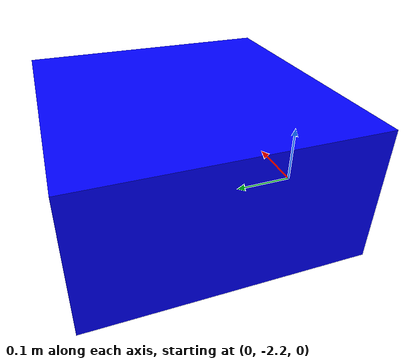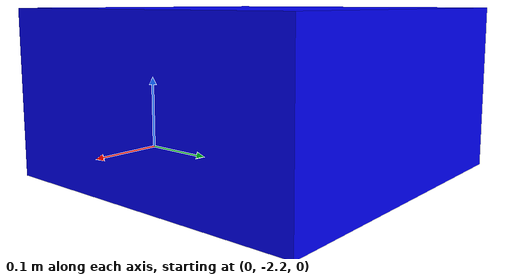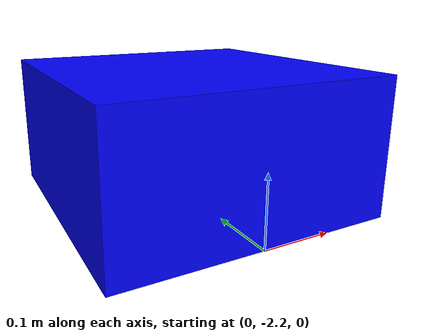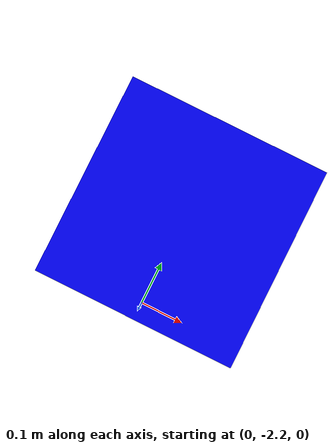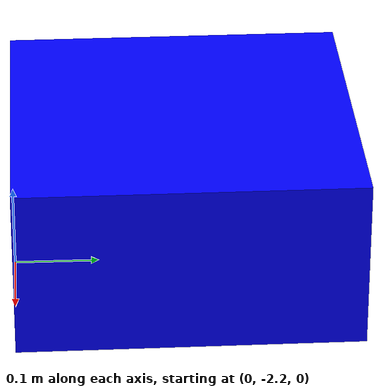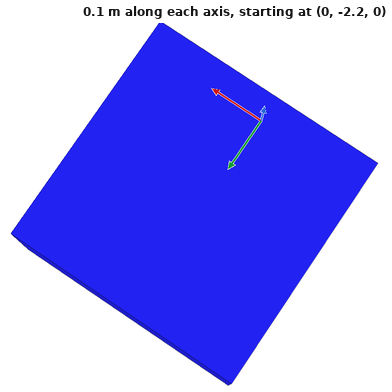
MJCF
<mujoco model="mobile_robot">
  <compiler angle="degree" coordinate="local"/>
  <option timestep="0.01"/>

  <worldbody>
    <body name="robot" pos="0 -2 0.1">
      <geom type="box" size="0.2 0.2 0.1" rgba="0 0 1 1"/>

      <joint name="x" type="slide" axis="1 0 0"/>
      <joint name="y" type="slide" axis="0 1 0"/>

      <camera name="robot_cam" pos="0 0 0.3" euler="0 0 0"/>
    </body>
  </worldbody>

  <actuator>
    <motor joint="x" ctrlrange="-1 1"/>
    <motor joint="y" ctrlrange="-1 1"/>
  </actuator>
</mujoco>
